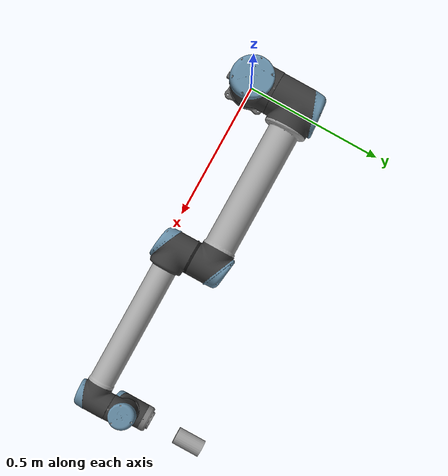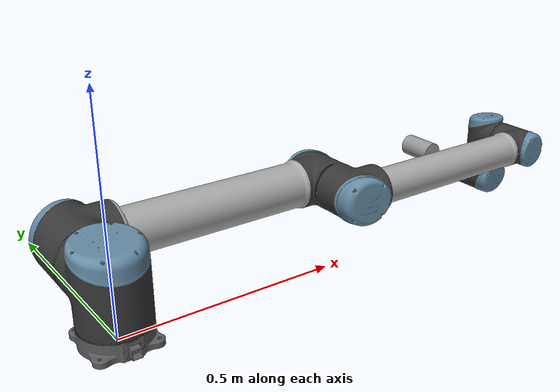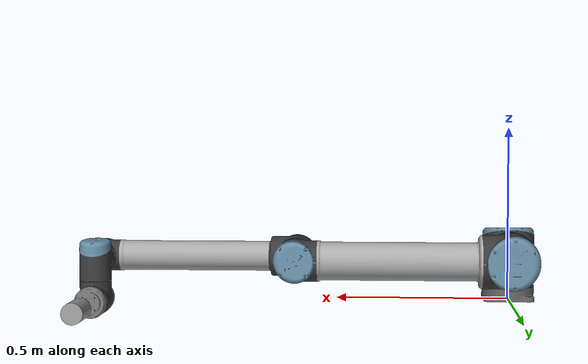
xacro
<?xml version="1.0" ?>
<!-- |    This document was autogenerated by xacro from ur_description/urdf/ur10_with_gripper.xacro | -->
<!-- |    EDITING THIS FILE BY HAND IS NOT RECOMMENDED                                 | -->
<robot name="ur10_with_gripper">
  <!-- Create world link -->
  <link name="world"/>
  <ros2_control name="ur10" type="system">
    <hardware>
      <plugin>mock_components/GenericSystem</plugin>
      <param name="robot_ip">0.0.0.0</param>
      <param name="script_filename">to_be_filled_by_ur_robot_driver</param>
      <param name="output_recipe_filename">to_be_filled_by_ur_robot_driver</param>
      <param name="input_recipe_filename">to_be_filled_by_ur_robot_driver</param>
      <param name="headless_mode">False</param>
      <param name="reverse_port">50001</param>
      <param name="script_sender_port">50002</param>
      <param name="reverse_ip">0.0.0.0</param>
      <param name="script_command_port">50004</param>
      <param name="trajectory_port">50003</param>
      <param name="tf_prefix"></param>
      <param name="non_blocking_read">True</param>
      <param name="servoj_gain">2000</param>
      <param name="servoj_lookahead_time">0.03</param>
      <param name="use_tool_communication">False</param>
      <param name="kinematics/hash">calib_17227329492635474227</param>
      <param name="tool_voltage">0</param>
      <param name="tool_parity">0</param>
      <param name="tool_baud_rate">115200</param>
      <param name="tool_stop_bits">1</param>
      <param name="tool_rx_idle_chars">1.5</param>
      <param name="tool_tx_idle_chars">3.5</param>
      <param name="tool_device_name">/tmp/ttyUR</param>
      <param name="tool_tcp_port">54321</param>
      <param name="keep_alive_count">2</param>
    </hardware>
    <joint name="shoulder_pan_joint">
      <command_interface name="position"/>
      <command_interface name="velocity"/>
      <state_interface name="position">
        <!-- initial position for the FakeSystem and simulation -->
        <param name="initial_value">0.0</param>
      </state_interface>
      <state_interface name="velocity"/>
      <state_interface name="effort"/>
    </joint>
    <joint name="shoulder_lift_joint">
      <command_interface name="position"/>
      <command_interface name="velocity"/>
      <state_interface name="position">
        <!-- initial position for the FakeSystem and simulation -->
        <param name="initial_value">-1.57</param>
      </state_interface>
      <state_interface name="velocity"/>
      <state_interface name="effort"/>
    </joint>
    <joint name="elbow_joint">
      <command_interface name="position"/>
      <command_interface name="velocity"/>
      <state_interface name="position">
        <!-- initial position for the FakeSystem and simulation -->
        <param name="initial_value">0.0</param>
      </state_interface>
      <state_interface name="velocity"/>
      <state_interface name="effort"/>
    </joint>
    <joint name="wrist_1_joint">
      <command_interface name="position"/>
      <command_interface name="velocity"/>
      <state_interface name="position">
        <!-- initial position for the FakeSystem and simulation -->
        <param name="initial_value">-1.57</param>
      </state_interface>
      <state_interface name="velocity"/>
      <state_interface name="effort"/>
    </joint>
    <joint name="wrist_2_joint">
      <command_interface name="position"/>
      <command_interface name="velocity"/>
      <state_interface name="position">
        <!-- initial position for the FakeSystem and simulation -->
        <param name="initial_value">0.0</param>
      </state_interface>
      <state_interface name="velocity"/>
      <state_interface name="effort"/>
    </joint>
    <joint name="wrist_3_joint">
      <command_interface name="position"/>
      <command_interface name="velocity"/>
      <state_interface name="position">
        <!-- initial position for the FakeSystem and simulation -->
        <param name="initial_value">0.0</param>
      </state_interface>
      <state_interface name="velocity"/>
      <state_interface name="effort"/>
    </joint>
    <sensor name="tcp_fts_sensor">
      <state_interface name="force.x"/>
      <state_interface name="force.y"/>
      <state_interface name="force.z"/>
      <state_interface name="torque.x"/>
      <state_interface name="torque.y"/>
      <state_interface name="torque.z"/>
    </sensor>
    <sensor name="tcp_pose">
      <state_interface name="position.x"/>
      <state_interface name="position.y"/>
      <state_interface name="position.z"/>
      <state_interface name="orientation.x"/>
      <state_interface name="orientation.y"/>
      <state_interface name="orientation.z"/>
      <state_interface name="orientation.w"/>
    </sensor>
    <!-- NOTE The following are joints used only for testing with fake hardware and will change in the future -->
    <gpio name="speed_scaling">
      <state_interface name="speed_scaling_factor"/>
      <param name="initial_speed_scaling_factor">1</param>
      <command_interface name="target_speed_fraction_cmd"/>
      <command_interface name="target_speed_fraction_async_success"/>
    </gpio>
    <gpio name="gpio">
      <command_interface name="standard_digital_output_cmd_0"/>
      <command_interface name="standard_digital_output_cmd_1"/>
      <command_interface name="standard_digital_output_cmd_2"/>
      <command_interface name="standard_digital_output_cmd_3"/>
      <command_interface name="standard_digital_output_cmd_4"/>
      <command_interface name="standard_digital_output_cmd_5"/>
      <command_interface name="standard_digital_output_cmd_6"/>
      <command_interface name="standard_digital_output_cmd_7"/>
      <command_interface name="standard_digital_output_cmd_8"/>
      <command_interface name="standard_digital_output_cmd_9"/>
      <command_interface name="standard_digital_output_cmd_10"/>
      <command_interface name="standard_digital_output_cmd_11"/>
      <command_interface name="standard_digital_output_cmd_12"/>
      <command_interface name="standard_digital_output_cmd_13"/>
      <command_interface name="standard_digital_output_cmd_14"/>
      <command_interface name="standard_digital_output_cmd_15"/>
      <command_interface name="standard_digital_output_cmd_16"/>
      <command_interface name="standard_digital_output_cmd_17"/>
      <command_interface name="standard_analog_output_cmd_0"/>
      <command_interface name="standard_analog_output_cmd_1"/>
      <command_interface name="analog_output_domain_cmd"/>
      <command_interface name="tool_voltage_cmd"/>
      <command_interface name="io_async_success"/>
      <state_interface name="digital_output_0"/>
      <state_interface name="digital_output_1"/>
      <state_interface name="digital_output_2"/>
      <state_interface name="digital_output_3"/>
      <state_interface name="digital_output_4"/>
      <state_interface name="digital_output_5"/>
      <state_interface name="digital_output_6"/>
      <state_interface name="digital_output_7"/>
      <state_interface name="digital_output_8"/>
      <state_interface name="digital_output_9"/>
      <state_interface name="digital_output_10"/>
      <state_interface name="digital_output_11"/>
      <state_interface name="digital_output_12"/>
      <state_interface name="digital_output_13"/>
      <state_interface name="digital_output_14"/>
      <state_interface name="digital_output_15"/>
      <state_interface name="digital_output_16"/>
      <state_interface name="digital_output_17"/>
      <state_interface name="digital_input_0"/>
      <state_interface name="digital_input_1"/>
      <state_interface name="digital_input_2"/>
      <state_interface name="digital_input_3"/>
      <state_interface name="digital_input_4"/>
      <state_interface name="digital_input_5"/>
      <state_interface name="digital_input_6"/>
      <state_interface name="digital_input_7"/>
      <state_interface name="digital_input_8"/>
      <state_interface name="digital_input_9"/>
      <state_interface name="digital_input_10"/>
      <state_interface name="digital_input_11"/>
      <state_interface name="digital_input_12"/>
      <state_interface name="digital_input_13"/>
      <state_interface name="digital_input_14"/>
      <state_interface name="digital_input_15"/>
      <state_interface name="digital_input_16"/>
      <state_interface name="digital_input_17"/>
      <state_interface name="standard_analog_output_0"/>
      <state_interface name="standard_analog_output_1"/>
      <state_interface name="standard_analog_input_0"/>
      <state_interface name="standard_analog_input_1"/>
      <state_interface name="analog_io_type_0"/>
      <state_interface name="analog_io_type_1"/>
      <state_interface name="analog_io_type_2"/>
      <state_interface name="analog_io_type_3"/>
      <state_interface name="tool_mode"/>
      <state_interface name="tool_output_voltage"/>
      <state_interface name="tool_output_current"/>
      <state_interface name="tool_temperature"/>
      <state_interface name="tool_analog_input_0"/>
      <state_interface name="tool_analog_input_1"/>
      <state_interface name="tool_analog_input_type_0"/>
      <state_interface name="tool_analog_input_type_1"/>
      <state_interface name="robot_mode"/>
      <state_interface name="robot_status_bit_0"/>
      <state_interface name="robot_status_bit_1"/>
      <state_interface name="robot_status_bit_2"/>
      <state_interface name="robot_status_bit_3"/>
      <state_interface name="safety_mode"/>
      <state_interface name="safety_status_bit_0"/>
      <state_interface name="safety_status_bit_1"/>
      <state_interface name="safety_status_bit_2"/>
      <state_interface name="safety_status_bit_3"/>
      <state_interface name="safety_status_bit_4"/>
      <state_interface name="safety_status_bit_5"/>
      <state_interface name="safety_status_bit_6"/>
      <state_interface name="safety_status_bit_7"/>
      <state_interface name="safety_status_bit_8"/>
      <state_interface name="safety_status_bit_9"/>
      <state_interface name="safety_status_bit_10"/>
      <state_interface name="program_running"/>
    </gpio>
    <gpio name="payload">
      <command_interface name="mass"/>
      <command_interface name="cog.x"/>
      <command_interface name="cog.y"/>
      <command_interface name="cog.z"/>
      <command_interface name="payload_async_success"/>
    </gpio>
    <gpio name="resend_robot_program">
      <command_interface name="resend_robot_program_cmd"/>
      <command_interface name="resend_robot_program_async_success"/>
    </gpio>
    <gpio name="hand_back_control">
      <command_interface name="hand_back_control_cmd"/>
      <command_interface name="hand_back_control_async_success"/>
    </gpio>
    <gpio name="zero_ftsensor">
      <command_interface name="zero_ftsensor_cmd"/>
      <command_interface name="zero_ftsensor_async_success"/>
    </gpio>
    <gpio name="freedrive_mode">
      <command_interface name="async_success"/>
      <command_interface name="enable"/>
      <command_interface name="abort"/>
    </gpio>
    <gpio name="tool_contact">
      <command_interface name="tool_contact_set_state"/>
      <state_interface name="tool_contact_result"/>
      <state_interface name="tool_contact_state"/>
    </gpio>
    <gpio name="system_interface">
      <state_interface name="initialized"/>
    </gpio>
    <gpio name="force_mode">
      <command_interface name="task_frame_x"/>
      <command_interface name="task_frame_y"/>
      <command_interface name="task_frame_z"/>
      <command_interface name="task_frame_rx"/>
      <command_interface name="task_frame_ry"/>
      <command_interface name="task_frame_rz"/>
      <command_interface name="selection_vector_x"/>
      <command_interface name="selection_vector_y"/>
      <command_interface name="selection_vector_z"/>
      <command_interface name="selection_vector_rx"/>
      <command_interface name="selection_vector_ry"/>
      <command_interface name="selection_vector_rz"/>
      <command_interface name="wrench_x"/>
      <command_interface name="wrench_y"/>
      <command_interface name="wrench_z"/>
      <command_interface name="wrench_rx"/>
      <command_interface name="wrench_ry"/>
      <command_interface name="wrench_rz"/>
      <command_interface name="limits_x"/>
      <command_interface name="limits_y"/>
      <command_interface name="limits_z"/>
      <command_interface name="limits_rx"/>
      <command_interface name="limits_ry"/>
      <command_interface name="limits_rz"/>
      <command_interface name="type"/>
      <command_interface name="damping"/>
      <command_interface name="gain_scaling"/>
      <command_interface name="disable_cmd"/>
      <command_interface name="force_mode_async_success"/>
    </gpio>
    <gpio name="trajectory_passthrough">
      <command_interface name="setpoint_positions_0"/>
      <command_interface name="setpoint_positions_1"/>
      <command_interface name="setpoint_positions_2"/>
      <command_interface name="setpoint_positions_3"/>
      <command_interface name="setpoint_positions_4"/>
      <command_interface name="setpoint_positions_5"/>
      <command_interface name="setpoint_velocities_0"/>
      <command_interface name="setpoint_velocities_1"/>
      <command_interface name="setpoint_velocities_2"/>
      <command_interface name="setpoint_velocities_3"/>
      <command_interface name="setpoint_velocities_4"/>
      <command_interface name="setpoint_velocities_5"/>
      <command_interface name="setpoint_accelerations_0"/>
      <command_interface name="setpoint_accelerations_1"/>
      <command_interface name="setpoint_accelerations_2"/>
      <command_interface name="setpoint_accelerations_3"/>
      <command_interface name="setpoint_accelerations_4"/>
      <command_interface name="setpoint_accelerations_5"/>
      <command_interface name="transfer_state"/>
      <command_interface name="time_from_start"/>
      <command_interface name="abort"/>
    </gpio>
    <gpio name="get_robot_software_version">
      <state_interface name="get_version_major"/>
      <state_interface name="get_version_minor"/>
      <state_interface name="get_version_build"/>
      <state_interface name="get_version_bugfix"/>
    </gpio>
  </ros2_control>
  <!-- Add URDF transmission elements (for ros_control) -->
  <!-- Placeholder for ros2_control transmission which don't yet exist -->
  <!-- links -  main serial chain -->
  <link name="base_link"/>
  <link name="base_link_inertia">
    <visual>
      <origin rpy="0 0 3.141592653589793" xyz="0 0 0"/>
      <geometry>
        <mesh filename="package://ur_description/meshes/ur10/visual/base.dae"/>
      </geometry>
    </visual>
    <collision>
      <origin rpy="0 0 3.141592653589793" xyz="0 0 0"/>
      <geometry>
        <mesh filename="package://ur_description/meshes/ur10/collision/base.stl"/>
      </geometry>
    </collision>
    <inertial>
      <mass value="4.0"/>
      <origin rpy="0 0 0" xyz="0 0 0"/>
      <inertia ixx="0.0061063308908" ixy="0.0" ixz="0.0" iyy="0.0061063308908" iyz="0.0" izz="0.01125"/>
    </inertial>
  </link>
  <link name="shoulder_link">
    <visual>
      <origin rpy="0 0 3.141592653589793" xyz="0 0 0"/>
      <geometry>
        <mesh filename="package://ur_description/meshes/ur10/visual/shoulder.dae"/>
      </geometry>
    </visual>
    <collision>
      <origin rpy="0 0 3.141592653589793" xyz="0 0 0"/>
      <geometry>
        <mesh filename="package://ur_description/meshes/ur10/collision/shoulder.stl"/>
      </geometry>
    </collision>
    <inertial>
      <mass value="7.1"/>
      <origin rpy="1.570796326794897 0 0" xyz="0.021 -0.027 0.0"/>
      <inertia ixx="0.03408" ixy="2e-05" ixz="-0.00425" iyy="0.03529" iyz="8e-05" izz="0.02156"/>
    </inertial>
  </link>
  <link name="upper_arm_link">
    <visual>
      <origin rpy="1.5707963267948966 0 -1.5707963267948966" xyz="0 0 0.220941"/>
      <geometry>
        <mesh filename="package://ur_description/meshes/ur10/visual/upperarm.dae"/>
      </geometry>
    </visual>
    <collision>
      <origin rpy="1.5707963267948966 0 -1.5707963267948966" xyz="0 0 0.220941"/>
      <geometry>
        <mesh filename="package://ur_description/meshes/ur10/collision/upperarm.stl"/>
      </geometry>
    </collision>
    <inertial>
      <mass value="12.7"/>
      <origin rpy="0 0 0" xyz="-0.232 0.0 0.158"/>
      <inertia ixx="0.02814" ixy="5e-05" ixz="-0.01561" iyy="0.77068" iyz="2e-05" izz="0.76943"/>
    </inertial>
  </link>
  <link name="forearm_link">
    <visual>
      <origin rpy="1.5707963267948966 0 -1.5707963267948966" xyz="0 0 0.049042"/>
      <geometry>
        <mesh filename="package://ur_description/meshes/ur10/visual/forearm.dae"/>
      </geometry>
    </visual>
    <collision>
      <origin rpy="1.5707963267948966 0 -1.5707963267948966" xyz="0 0 0.049042"/>
      <geometry>
        <mesh filename="package://ur_description/meshes/ur10/collision/forearm.stl"/>
      </geometry>
    </collision>
    <inertial>
      <mass value="4.27"/>
      <origin rpy="0 0 0" xyz="-0.3323 0.0 0.068"/>
      <inertia ixx="0.01014" ixy="8e-05" ixz="0.00916" iyy="0.30928" iyz="0.0" izz="0.30646"/>
    </inertial>
  </link>
  <link name="wrist_1_link">
    <visual>
      <origin rpy="1.5707963267948966 0 0" xyz="0 0 -0.1149"/>
      <geometry>
        <mesh filename="package://ur_description/meshes/ur10/visual/wrist1.dae"/>
      </geometry>
    </visual>
    <collision>
      <origin rpy="1.5707963267948966 0 0" xyz="0 0 -0.1149"/>
      <geometry>
        <mesh filename="package://ur_description/meshes/ur10/collision/wrist1.stl"/>
      </geometry>
    </collision>
    <inertial>
      <mass value="2.0"/>
      <origin rpy="1.570796326794897 0 0" xyz="0.0 -0.018 0.007"/>
      <inertia ixx="0.00296" ixy="-1e-05" ixz="0.0" iyy="0.00222" iyz="-0.00024" izz="0.00258"/>
    </inertial>
  </link>
  <link name="wrist_2_link">
    <visual>
      <origin rpy="0 0 0" xyz="0 0 -0.1158"/>
      <geometry>
        <mesh filename="package://ur_description/meshes/ur10/visual/wrist2.dae"/>
      </geometry>
    </visual>
    <collision>
      <origin rpy="0 0 0" xyz="0 0 -0.1158"/>
      <geometry>
        <mesh filename="package://ur_description/meshes/ur10/collision/wrist2.stl"/>
      </geometry>
    </collision>
    <inertial>
      <mass value="2.0"/>
      <origin rpy="-1.570796326794897 0 0" xyz="0.0 0.018 -0.007"/>
      <inertia ixx="0.00296" ixy="-1e-05" ixz="0.0" iyy="0.00222" iyz="-0.00024" izz="0.00258"/>
    </inertial>
  </link>
  <link name="wrist_3_link">
    <visual>
      <origin rpy="1.5707963267948966 0 0" xyz="0 0 -0.0922"/>
      <geometry>
        <mesh filename="package://ur_description/meshes/ur10/visual/wrist3.dae"/>
      </geometry>
    </visual>
    <collision>
      <origin rpy="1.5707963267948966 0 0" xyz="0 0 -0.0922"/>
      <geometry>
        <mesh filename="package://ur_description/meshes/ur10/collision/wrist3.stl"/>
      </geometry>
    </collision>
    <inertial>
      <mass value="0.365"/>
      <origin rpy="0 0 0" xyz="0.0 0 -0.026"/>
      <inertia ixx="0.0004" ixy="0.0" ixz="0.0" iyy="0.00041" iyz="0.0" izz="0.00034"/>
    </inertial>
  </link>
  <!-- base_joint fixes base_link to the environment -->
  <joint name="base_joint" type="fixed">
    <origin rpy="0 0 0" xyz="0 0 0"/>
    <parent link="world"/>
    <child link="base_link"/>
  </joint>
  <!-- joints - main serial chain -->
  <joint name="base_link-base_link_inertia" type="fixed">
    <parent link="base_link"/>
    <child link="base_link_inertia"/>
    <origin rpy="0 0 3.141592653589793" xyz="0 0 0"/>
  </joint>
  <joint name="shoulder_pan_joint" type="revolute">
    <parent link="base_link_inertia"/>
    <child link="shoulder_link"/>
    <origin rpy="0 0 0" xyz="0 0 0.1273"/>
    <axis xyz="0 0 1"/>
    <limit effort="330.0" lower="-6.283185307179586" upper="6.283185307179586" velocity="2.0943951023931953"/>
    <dynamics damping="0" friction="0"/>
  </joint>
  <joint name="shoulder_lift_joint" type="revolute">
    <parent link="shoulder_link"/>
    <child link="upper_arm_link"/>
    <origin rpy="1.570796327 0 0" xyz="0 0 0"/>
    <axis xyz="0 0 1"/>
    <limit effort="330.0" lower="-6.283185307179586" upper="6.283185307179586" velocity="2.0943951023931953"/>
    <dynamics damping="0" friction="0"/>
  </joint>
  <joint name="elbow_joint" type="revolute">
    <parent link="upper_arm_link"/>
    <child link="forearm_link"/>
    <origin rpy="0 0 0" xyz="-0.612 0 0"/>
    <axis xyz="0 0 1"/>
    <limit effort="150.0" lower="-3.141592653589793" upper="3.141592653589793" velocity="3.141592653589793"/>
    <dynamics damping="0" friction="0"/>
  </joint>
  <joint name="wrist_1_joint" type="revolute">
    <parent link="forearm_link"/>
    <child link="wrist_1_link"/>
    <origin rpy="0 0 0" xyz="-0.5723 0 0.163941"/>
    <axis xyz="0 0 1"/>
    <limit effort="56.0" lower="-6.283185307179586" upper="6.283185307179586" velocity="3.141592653589793"/>
    <dynamics damping="0" friction="0"/>
  </joint>
  <joint name="wrist_2_joint" type="revolute">
    <parent link="wrist_1_link"/>
    <child link="wrist_2_link"/>
    <origin rpy="1.570796327 0 0" xyz="0 -0.1157 -2.373046667922381e-11"/>
    <axis xyz="0 0 1"/>
    <limit effort="56.0" lower="-6.283185307179586" upper="6.283185307179586" velocity="3.141592653589793"/>
    <dynamics damping="0" friction="0"/>
  </joint>
  <joint name="wrist_3_joint" type="revolute">
    <parent link="wrist_2_link"/>
    <child link="wrist_3_link"/>
    <origin rpy="1.570796326589793 3.141592653589793 3.141592653589793" xyz="0 0.0922 -1.891053610911353e-11"/>
    <axis xyz="0 0 1"/>
    <limit effort="56.0" lower="-6.283185307179586" upper="6.283185307179586" velocity="3.141592653589793"/>
    <dynamics damping="0" friction="0"/>
  </joint>
  <link name="ft_frame"/>
  <joint name="wrist_3_link-ft_frame" type="fixed">
    <parent link="wrist_3_link"/>
    <child link="ft_frame"/>
    <origin rpy="3.141592653589793 0 0" xyz="0 0 0"/>
  </joint>
  <!-- ROS-Industrial 'base' frame - base_link to UR 'Base' Coordinates transform -->
  <link name="base"/>
  <joint name="base_link-base_fixed_joint" type="fixed">
    <origin rpy="0 0 3.141592653589793" xyz="0 0 0"/>
    <parent link="base_link"/>
    <child link="base"/>
  </joint>
  <!-- ROS-Industrial 'flange' frame - attachment point for EEF models -->
  <link name="flange"/>
  <joint name="wrist_3-flange" type="fixed">
    <parent link="wrist_3_link"/>
    <child link="flange"/>
    <origin rpy="0 -1.5707963267948966 -1.5707963267948966" xyz="0 0 0"/>
  </joint>
  <!-- ROS-Industrial 'tool0' frame - all-zeros tool frame -->
  <link name="tool0"/>
  <joint name="flange-tool0" type="fixed">
    <!-- default toolframe - X+ left, Y+ up, Z+ front -->
    <origin rpy="1.5707963267948966 0 1.5707963267948966" xyz="0 0 0"/>
    <parent link="flange"/>
    <child link="tool0"/>
  </joint>
  <!-- Base link of the gripper -->
  <link name="gripper_base">
    <visual>
      <origin rpy="0 0 0" xyz="0 0 0.05"/>
      <geometry>
        <cylinder length="0.1" radius="0.03"/>
      </geometry>
      <material name="grey">
        <color rgba="0.6 0.6 0.6 1"/>
      </material>
    </visual>
    <collision>
      <origin rpy="0 0 0" xyz="0 0 0.05"/>
      <geometry>
        <cylinder length="0.1" radius="0.03"/>
      </geometry>
    </collision>
  </link>
  <!-- Fixed joint attaching the gripper to parent (tool0) -->
  <joint name="gripper_mount_joint" type="fixed">
    <parent link="tool0"/>
    <child link="gripper_base"/>
    <!-- Apply fingertip offset directly through existing joint -->
    <origin rpy="0 0 0" xyz="0 0 0.1"/>
  </joint>
</robot>
